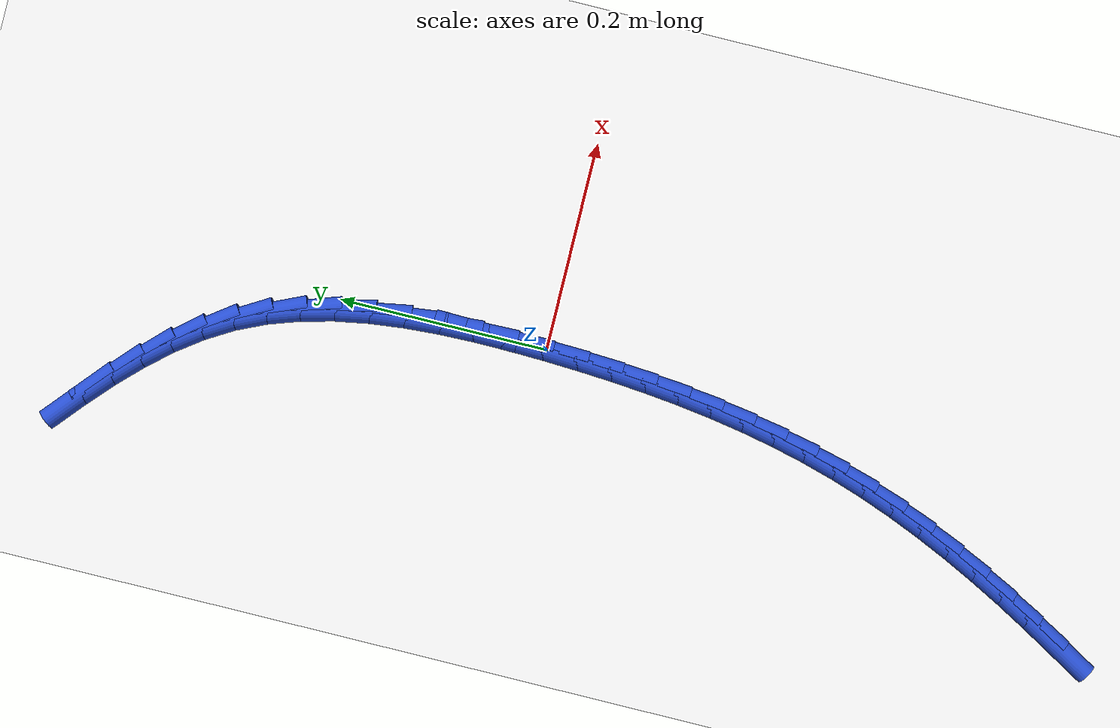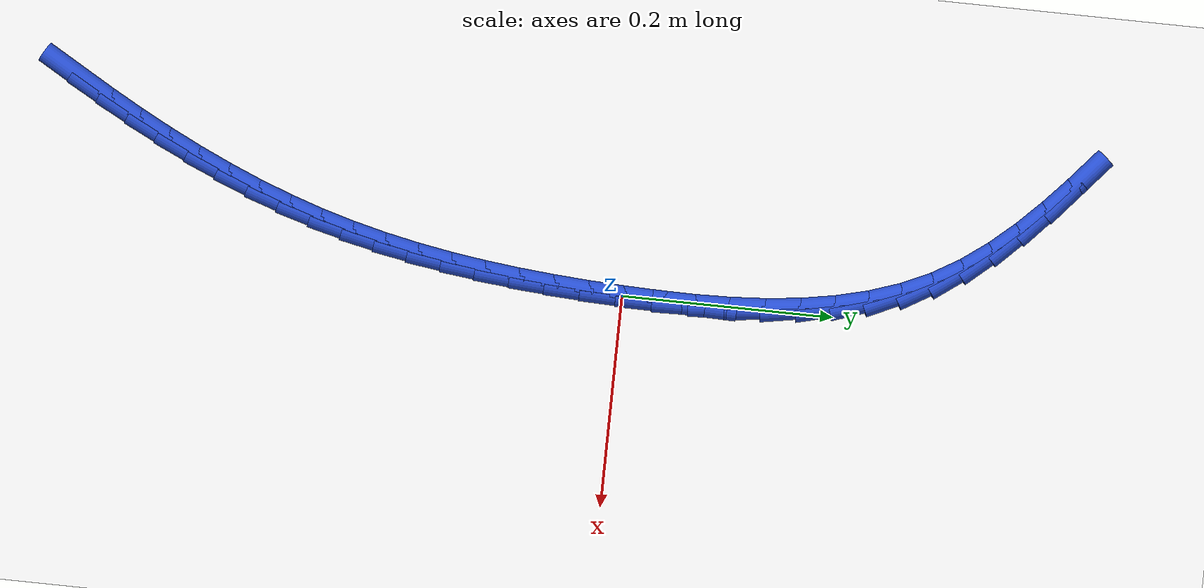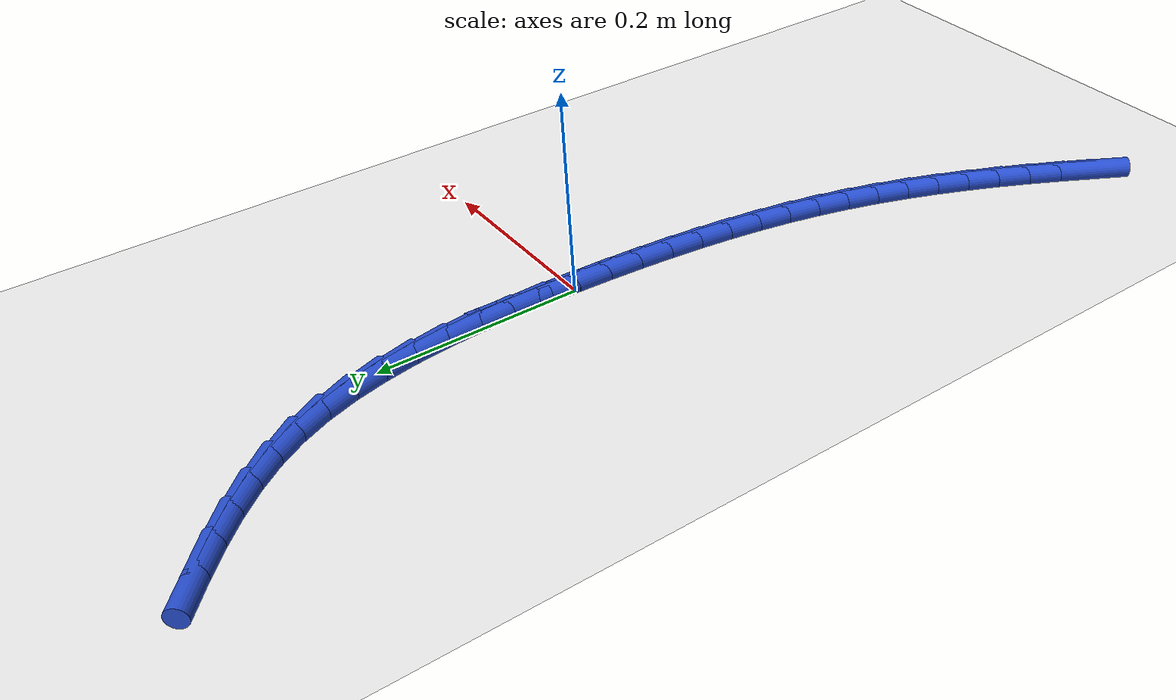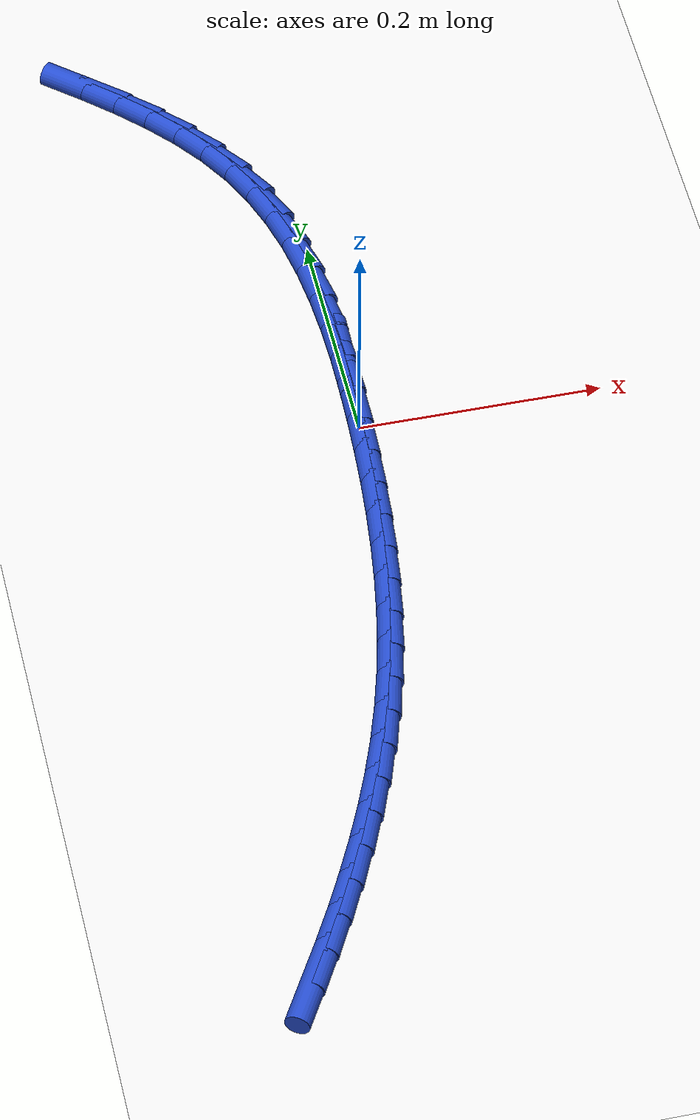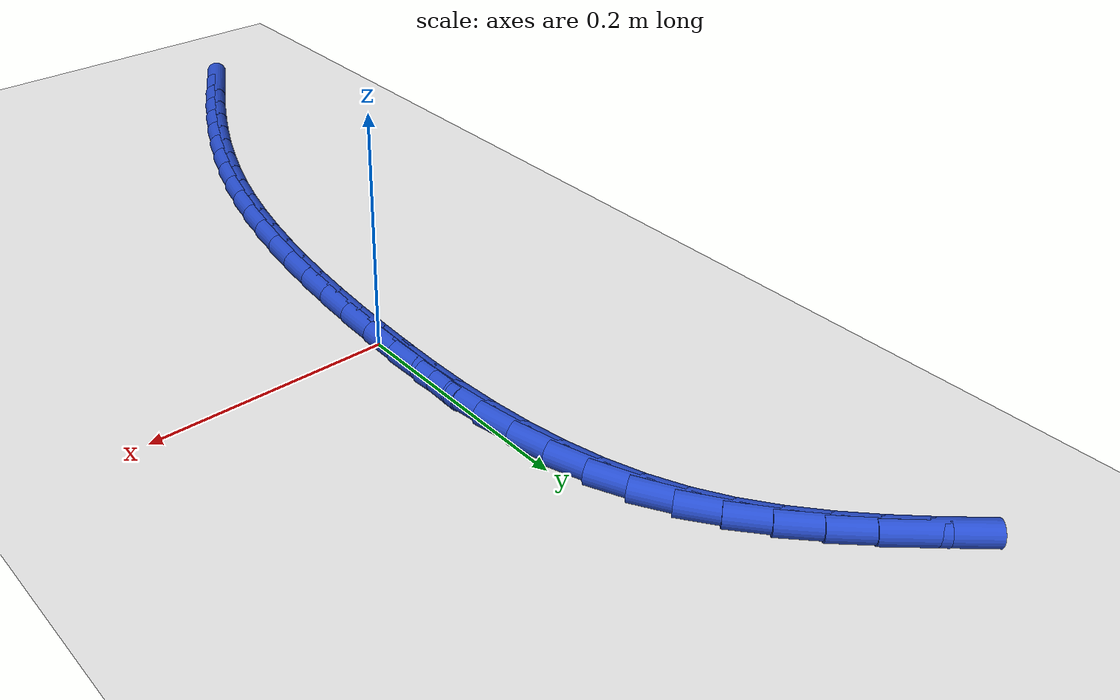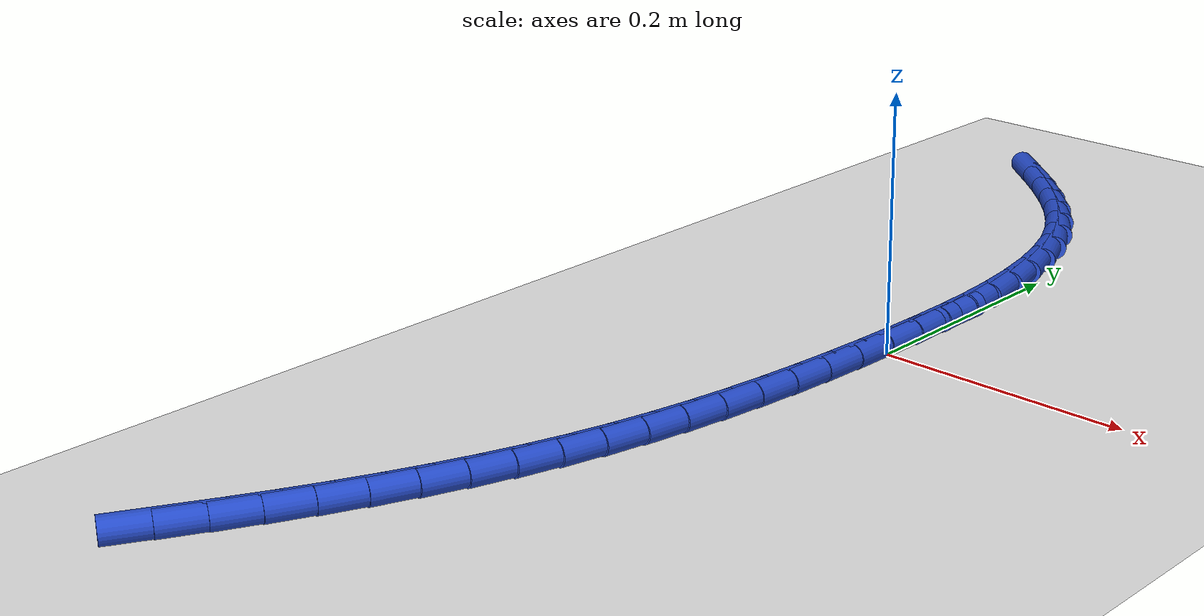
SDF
<sdf version="1.6">
 <world name="default">
  <model name="ground_plane">
   <static>1</static>
   <link name="link">
    <collision name="collision">
     <geometry><plane><normal>0 0 1</normal><size>100 100</size></plane></geometry>
     <surface><friction><ode><mu>100</mu><mu2>50</mu2></ode></friction></surface>
    </collision>
    <visual name="visual">
     <cast_shadows>0</cast_shadows>
     <geometry><plane><normal>0 0 1</normal><size>100 100</size></plane></geometry>
     <material>
      <script><uri>file://media/materials/scripts/gazebo.material</uri><name>Gazebo/WhiteGlow</name></script>
     </material>
    </visual>
   </link>
  </model>
  <model name="line">
   <link name="link_0">
    <pose>4.445228907190568e-18 -3.469446951953614e-17 0.01 0 1.57 1.5410624673054036</pose>
    <collision name="collision">
     <geometry><cylinder><radius>0.01</radius><length>0.08</length></cylinder></geometry>
    </collision>
    <visual name="visual">
     <material>
      <script><name>Gazebo/Blue</name><uri>file://media/materials/scripts/gazebo.material</uri></script>
     </material>
     <geometry><cylinder><radius>0.01</radius><length>0.08</length></cylinder></geometry>
    </visual>
   </link>
   <link name="link_1">
    <pose>0.0010117681337784947 0.03401744558865021 0.01 0 1.57 1.5644141247974244</pose>
    <collision name="collision">
     <geometry><cylinder><radius>0.01</radius><length>0.08</length></cylinder></geometry>
    </collision>
    <visual name="visual">
     <material>
      <script><name>Gazebo/Blue</name><uri>file://media/materials/scripts/gazebo.material</uri></script>
     </material>
     <geometry><cylinder><radius>0.01</radius><length>0.08</length></cylinder></geometry>
    </visual>
   </link>
   <link name="link_2">
    <pose>0.001229728686603296 0.06816829094633647 0.01 0 1.57 -1.5457852256134852</pose>
    <collision name="collision">
     <geometry><cylinder><radius>0.01</radius><length>0.08</length></cylinder></geometry>
    </collision>
    <visual name="visual">
     <material>
      <script><name>Gazebo/Blue</name><uri>file://media/materials/scripts/gazebo.material</uri></script>
     </material>
     <geometry><cylinder><radius>0.01</radius><length>0.08</length></cylinder></geometry>
    </visual>
   </link>
   <link name="link_3">
    <pose>0.00037788111578270726 0.10221996789361065 0.01 0 1.57 -1.5057145824237133</pose>
    <collision name="collision">
     <geometry><cylinder><radius>0.01</radius><length>0.08</length></cylinder></geometry>
    </collision>
    <visual name="visual">
     <material>
      <script><name>Gazebo/Blue</name><uri>file://media/materials/scripts/gazebo.material</uri></script>
     </material>
     <geometry><cylinder><radius>0.01</radius><length>0.08</length></cylinder></geometry>
    </visual>
   </link>
   <link name="link_4">
    <pose>-0.0018197751213749704 0.1359399082510246 0.01 0 1.57 -1.456103813256212</pose>
    <collision name="collision">
     <geometry><cylinder><radius>0.01</radius><length>0.08</length></cylinder></geometry>
    </collision>
    <visual name="visual">
     <material>
      <script><name>Gazebo/Blue</name><uri>file://media/materials/scripts/gazebo.material</uri></script>
     </material>
     <geometry><cylinder><radius>0.01</radius><length>0.08</length></cylinder></geometry>
    </visual>
   </link>
   <link name="link_5">
    <pose>-0.00563924056756144 0.1690955438391303 0.01 0 1.57 -1.3959171814999916</pose>
    <collision name="collision">
     <geometry><cylinder><radius>0.01</radius><length>0.08</length></cylinder></geometry>
    </collision>
    <visual name="visual">
     <material>
      <script><name>Gazebo/Blue</name><uri>file://media/materials/scripts/gazebo.material</uri></script>
     </material>
     <geometry><cylinder><radius>0.01</radius><length>0.08</length></cylinder></geometry>
    </visual>
   </link>
   <link name="link_6">
    <pose>-0.011356515765468402 0.20145430647847976 0.01 0 1.57 -1.3240533585304117</pose>
    <collision name="collision">
     <geometry><cylinder><radius>0.01</radius><length>0.08</length></cylinder></geometry>
    </collision>
    <visual name="visual">
     <material>
      <script><name>Gazebo/Blue</name><uri>file://media/materials/scripts/gazebo.material</uri></script>
     </material>
     <geometry><cylinder><radius>0.01</radius><length>0.08</length></cylinder></geometry>
    </visual>
   </link>
   <link name="link_7">
    <pose>-0.019247601257787558 0.2327836279896246 0.01 0 1.57 -1.2395438715242892</pose>
    <collision name="collision">
     <geometry><cylinder><radius>0.01</radius><length>0.08</length></cylinder></geometry>
    </collision>
    <visual name="visual">
     <material>
      <script><name>Gazebo/Blue</name><uri>file://media/materials/scripts/gazebo.material</uri></script>
     </material>
     <geometry><cylinder><radius>0.01</radius><length>0.08</length></cylinder></geometry>
    </visual>
   </link>
   <link name="link_8">
    <pose>-0.0295884975872106 0.262850940193117 0.01 0 1.57 -1.141876861490044</pose>
    <collision name="collision">
     <geometry><cylinder><radius>0.01</radius><length>0.08</length></cylinder></geometry>
    </collision>
    <visual name="visual">
     <material>
      <script><name>Gazebo/Blue</name><uri>file://media/materials/scripts/gazebo.material</uri></script>
     </material>
     <geometry><cylinder><radius>0.01</radius><length>0.08</length></cylinder></geometry>
    </visual>
   </link>
   <link name="link_9">
    <pose>-0.04265520529642923 0.29142367490950866 0.01 0 1.57 -1.0344659712067037</pose>
    <collision name="collision">
     <geometry><cylinder><radius>0.01</radius><length>0.08</length></cylinder></geometry>
    </collision>
    <visual name="visual">
     <material>
      <script><name>Gazebo/Blue</name><uri>file://media/materials/scripts/gazebo.material</uri></script>
     </material>
     <geometry><cylinder><radius>0.01</radius><length>0.08</length></cylinder></geometry>
    </visual>
   </link>
   <link name="link_10">
    <pose>-0.05864610086537305 0.3183238894450057 0.01 0 1.57 -0.9363617559724516</pose>
    <collision name="collision">
     <geometry><cylinder><radius>0.01</radius><length>0.08</length></cylinder></geometry>
    </collision>
    <visual name="visual">
     <material>
      <script><name>Gazebo/Blue</name><uri>file://media/materials/scripts/gazebo.material</uri></script>
     </material>
     <geometry><cylinder><radius>0.01</radius><length>0.08</length></cylinder></geometry>
    </visual>
   </link>
   <link name="link_11">
    <pose>-0.07731247507242245 0.3436882635657469 0.01 0 1.57 -0.8551392113034808</pose>
    <collision name="collision">
     <geometry><cylinder><radius>0.01</radius><length>0.08</length></cylinder></geometry>
    </collision>
    <visual name="visual">
     <material>
      <script><name>Gazebo/Blue</name><uri>file://media/materials/scripts/gazebo.material</uri></script>
     </material>
     <geometry><cylinder><radius>0.01</radius><length>0.08</length></cylinder></geometry>
    </visual>
   </link>
   <link name="link_12">
    <pose>-0.09824588230256005 0.3677658864861203 0.01 0 1.57 -0.7908158787239333</pose>
    <collision name="collision">
     <geometry><cylinder><radius>0.01</radius><length>0.08</length></cylinder></geometry>
    </collision>
    <visual name="visual">
     <material>
      <script><name>Gazebo/Blue</name><uri>file://media/materials/scripts/gazebo.material</uri></script>
     </material>
     <geometry><cylinder><radius>0.01</radius><length>0.08</length></cylinder></geometry>
    </visual>
   </link>
   <link name="link_13">
    <pose>-0.12103767720075201 0.3908059879812509 0.01 0 1.57 -0.7426283027489987</pose>
    <collision name="collision">
     <geometry><cylinder><radius>0.01</radius><length>0.08</length></cylinder></geometry>
    </collision>
    <visual name="visual">
     <material>
      <script><name>Gazebo/Blue</name><uri>file://media/materials/scripts/gazebo.material</uri></script>
     </material>
     <geometry><cylinder><radius>0.01</radius><length>0.08</length></cylinder></geometry>
    </visual>
   </link>
   <link name="link_14">
    <pose>-0.14527921441196445 0.413057797826263 0.01 0 1.57 -0.7095812793869186</pose>
    <collision name="collision">
     <geometry><cylinder><radius>0.01</radius><length>0.08</length></cylinder></geometry>
    </collision>
    <visual name="visual">
     <material>
      <script><name>Gazebo/Blue</name><uri>file://media/materials/scripts/gazebo.material</uri></script>
     </material>
     <geometry><cylinder><radius>0.01</radius><length>0.08</length></cylinder></geometry>
    </visual>
   </link>
   <link name="link_193">
    <pose>-0.1525487724596701 -0.5284028814637727 0.01 0 1.57 1.0458899142883105</pose>
    <collision name="collision">
     <geometry><cylinder><radius>0.01</radius><length>0.08</length></cylinder></geometry>
    </collision>
    <visual name="visual">
     <material>
      <script><name>Gazebo/Blue</name><uri>file://media/materials/scripts/gazebo.material</uri></script>
     </material>
     <geometry><cylinder><radius>0.01</radius><length>0.08</length></cylinder></geometry>
    </visual>
   </link>
   <link name="link_194">
    <pose>-0.1360288813682088 -0.499875803621285 0.01 0 1.57 1.0673247395347207</pose>
    <collision name="collision">
     <geometry><cylinder><radius>0.01</radius><length>0.08</length></cylinder></geometry>
    </collision>
    <visual name="visual">
     <material>
      <script><name>Gazebo/Blue</name><uri>file://media/materials/scripts/gazebo.material</uri></script>
     </material>
     <geometry><cylinder><radius>0.01</radius><length>0.08</length></cylinder></geometry>
    </visual>
   </link>
   <link name="link_195">
    <pose>-0.12012750264815338 -0.47100718047602663 0.01 0 1.57 1.0913330585999546</pose>
    <collision name="collision">
     <geometry><cylinder><radius>0.01</radius><length>0.08</length></cylinder></geometry>
    </collision>
    <visual name="visual">
     <material>
      <script><name>Gazebo/Blue</name><uri>file://media/materials/scripts/gazebo.material</uri></script>
     </material>
     <geometry><cylinder><radius>0.01</radius><length>0.08</length></cylinder></geometry>
    </visual>
   </link>
   <link name="link_196">
    <pose>-0.10494409115319124 -0.4418043153237062 0.01 0 1.57 1.1180140517679058</pose>
    <collision name="collision">
     <geometry><cylinder><radius>0.01</radius><length>0.08</length></cylinder></geometry>
    </collision>
    <visual name="visual">
     <material>
      <script><name>Gazebo/Blue</name><uri>file://media/materials/scripts/gazebo.material</uri></script>
     </material>
     <geometry><cylinder><radius>0.01</radius><length>0.08</length></cylinder></geometry>
    </visual>
   </link>
   <link name="link_197">
    <pose>-0.09057810173701078 -0.41227451146003397 0.01 0 1.57 1.1474726490349403</pose>
    <collision name="collision">
     <geometry><cylinder><radius>0.01</radius><length>0.08</length></cylinder></geometry>
    </collision>
    <visual name="visual">
     <material>
      <script><name>Gazebo/Blue</name><uri>file://media/materials/scripts/gazebo.material</uri></script>
     </material>
     <geometry><cylinder><radius>0.01</radius><length>0.08</length></cylinder></geometry>
    </visual>
   </link>
   <link name="link_198">
    <pose>-0.07712898925329924 -0.38242507218071825 0.01 0 1.57 1.1798143586063738</pose>
    <collision name="collision">
     <geometry><cylinder><radius>0.01</radius><length>0.08</length></cylinder></geometry>
    </collision>
    <visual name="visual">
     <material>
      <script><name>Gazebo/Blue</name><uri>file://media/materials/scripts/gazebo.material</uri></script>
     </material>
     <geometry><cylinder><radius>0.01</radius><length>0.08</length></cylinder></geometry>
    </visual>
   </link>
   <link name="link_199">
    <pose>-0.06469620855574434 -0.3522633007814683 0.01 0 1.57 1.2151386954749164</pose>
    <collision name="collision">
     <geometry><cylinder><radius>0.01</radius><length>0.08</length></cylinder></geometry>
    </collision>
    <visual name="visual">
     <material>
      <script><name>Gazebo/Blue</name><uri>file://media/materials/scripts/gazebo.material</uri></script>
     </material>
     <geometry><cylinder><radius>0.01</radius><length>0.08</length></cylinder></geometry>
    </visual>
   </link>
   <link name="link_200">
    <pose>-0.05337921449803376 -0.3217965005579929 0.01 0 1.57 1.2535294420407028</pose>
    <collision name="collision">
     <geometry><cylinder><radius>0.01</radius><length>0.08</length></cylinder></geometry>
    </collision>
    <visual name="visual">
     <material>
      <script><name>Gazebo/Blue</name><uri>file://media/materials/scripts/gazebo.material</uri></script>
     </material>
     <geometry><cylinder><radius>0.01</radius><length>0.08</length></cylinder></geometry>
    </visual>
   </link>
   <link name="link_201">
    <pose>-0.04327740781163751 -0.2910319702869627 0.01 0 1.57 1.2937883703490414</pose>
    <collision name="collision">
     <geometry><cylinder><radius>0.01</radius><length>0.08</length></cylinder></geometry>
    </collision>
    <visual name="visual">
     <material>
      <script><name>Gazebo/Blue</name><uri>file://media/materials/scripts/gazebo.material</uri></script>
     </material>
     <geometry><cylinder><radius>0.01</radius><length>0.08</length></cylinder></geometry>
    </visual>
   </link>
   <link name="link_202">
    <pose>-0.03444690652483356 -0.2599733947724232 0.01 0 1.57 1.3322970679099382</pose>
    <collision name="collision">
     <geometry><cylinder><radius>0.01</radius><length>0.08</length></cylinder></geometry>
    </collision>
    <visual name="visual">
     <material>
      <script><name>Gazebo/Blue</name><uri>file://media/materials/scripts/gazebo.material</uri></script>
     </material>
     <geometry><cylinder><radius>0.01</radius><length>0.08</length></cylinder></geometry>
    </visual>
   </link>
   <link name="link_203">
    <pose>-0.02682268484069044 -0.2286143436815304 0.01 0 1.57 1.3682304704234993</pose>
    <collision name="collision">
     <geometry><cylinder><radius>0.01</radius><length>0.08</length></cylinder></geometry>
    </collision>
    <visual name="visual">
     <material>
      <script><name>Gazebo/Blue</name><uri>file://media/materials/scripts/gazebo.material</uri></script>
     </material>
     <geometry><cylinder><radius>0.01</radius><length>0.08</length></cylinder></geometry>
    </visual>
   </link>
   <link name="link_204">
    <pose>-0.0203186836886581 -0.19694663046776723 0.01 0 1.57 1.4014198498100978</pose>
    <collision name="collision">
     <geometry><cylinder><radius>0.01</radius><length>0.08</length></cylinder></geometry>
    </collision>
    <visual name="visual">
     <material>
      <script><name>Gazebo/Blue</name><uri>file://media/materials/scripts/gazebo.material</uri></script>
     </material>
     <geometry><cylinder><radius>0.01</radius><length>0.08</length></cylinder></geometry>
    </visual>
   </link>
   <link name="link_205">
    <pose>-0.014848843998186706 -0.16496206858461737 0.01 0 1.57 1.4317491456547462</pose>
    <collision name="collision">
     <geometry><cylinder><radius>0.01</radius><length>0.08</length></cylinder></geometry>
    </collision>
    <visual name="visual">
     <material>
      <script><name>Gazebo/Blue</name><uri>file://media/materials/scripts/gazebo.material</uri></script>
     </material>
     <geometry><cylinder><radius>0.01</radius><length>0.08</length></cylinder></geometry>
    </visual>
   </link>
   <link name="link_206">
    <pose>-0.010327106698726427 -0.13265247148556464 0.01 0 1.57 1.4591492527397196</pose>
    <collision name="collision">
     <geometry><cylinder><radius>0.01</radius><length>0.08</length></cylinder></geometry>
    </collision>
    <visual name="visual">
     <material>
      <script><name>Gazebo/Blue</name><uri>file://media/materials/scripts/gazebo.material</uri></script>
     </material>
     <geometry><cylinder><radius>0.01</radius><length>0.08</length></cylinder></geometry>
    </visual>
   </link>
   <link name="link_207">
    <pose>-0.006667412719727446 -0.10000965262409282 0.01 0 1.57 1.48359112883843</pose>
    <collision name="collision">
     <geometry><cylinder><radius>0.01</radius><length>0.08</length></cylinder></geometry>
    </collision>
    <visual name="visual">
     <material>
      <script><name>Gazebo/Blue</name><uri>file://media/materials/scripts/gazebo.material</uri></script>
     </material>
     <geometry><cylinder><radius>0.01</radius><length>0.08</length></cylinder></geometry>
    </visual>
   </link>
   <link name="link_208">
    <pose>-0.0037837029906399346 -0.0670254254536856 0.01 0 1.57 1.5050785268759652</pose>
    <collision name="collision">
     <geometry><cylinder><radius>0.01</radius><length>0.08</length></cylinder></geometry>
    </collision>
    <visual name="visual">
     <material>
      <script><name>Gazebo/Blue</name><uri>file://media/materials/scripts/gazebo.material</uri></script>
     </material>
     <geometry><cylinder><radius>0.01</radius><length>0.08</length></cylinder></geometry>
    </visual>
   </link>
   <link name="link_209">
    <pose>-0.0015899184409140182 -0.03369160342782596 0.01 0 1.57 1.5236409633810728</pose>
    <collision name="collision">
     <geometry><cylinder><radius>0.01</radius><length>0.08</length></cylinder></geometry>
    </collision>
    <visual name="visual">
     <material>
      <script><name>Gazebo/Blue</name><uri>file://media/materials/scripts/gazebo.material</uri></script>
     </material>
     <geometry><cylinder><radius>0.01</radius><length>0.08</length></cylinder></geometry>
    </visual>
   </link>
   <link name="link_210">
    <pose>-1.0842021724855044e-19 -3.469446951953614e-17 0.01 0 1.57 1.5393273337667503</pose>
    <collision name="collision">
     <geometry><cylinder><radius>0.01</radius><length>0.08</length></cylinder></geometry>
    </collision>
    <visual name="visual">
     <material>
      <script><name>Gazebo/Blue</name><uri>file://media/materials/scripts/gazebo.material</uri></script>
     </material>
     <geometry><cylinder><radius>0.01</radius><length>0.08</length></cylinder></geometry>
    </visual>
   </link>
   <link name="link_211">
    <pose>0.0010721114026520755 0.0340575713763108 0.01 0 1.57 1.5522004068194117</pose>
    <collision name="collision">
     <geometry><cylinder><radius>0.01</radius><length>0.08</length></cylinder></geometry>
    </collision>
    <visual name="visual">
     <material>
      <script><name>Gazebo/Blue</name><uri>file://media/materials/scripts/gazebo.material</uri></script>
     </material>
     <geometry><cylinder><radius>0.01</radius><length>0.08</length></cylinder></geometry>
    </visual>
   </link>
   <link name="link_212">
    <pose>0.001712474837592015 0.0684892972476236 0.01 0 1.57 1.5457979960544062</pose>
    <collision name="collision">
     <geometry><cylinder><radius>0.01</radius><length>0.08</length></cylinder></geometry>
    </collision>
    <visual name="visual">
     <material>
      <script><name>Gazebo/Blue</name><uri>file://media/materials/scripts/gazebo.material</uri></script>
     </material>
     <geometry><cylinder><radius>0.01</radius><length>0.08</length></cylinder></geometry>
    </visual>
   </link>
  </model>
 </world>
</sdf>
